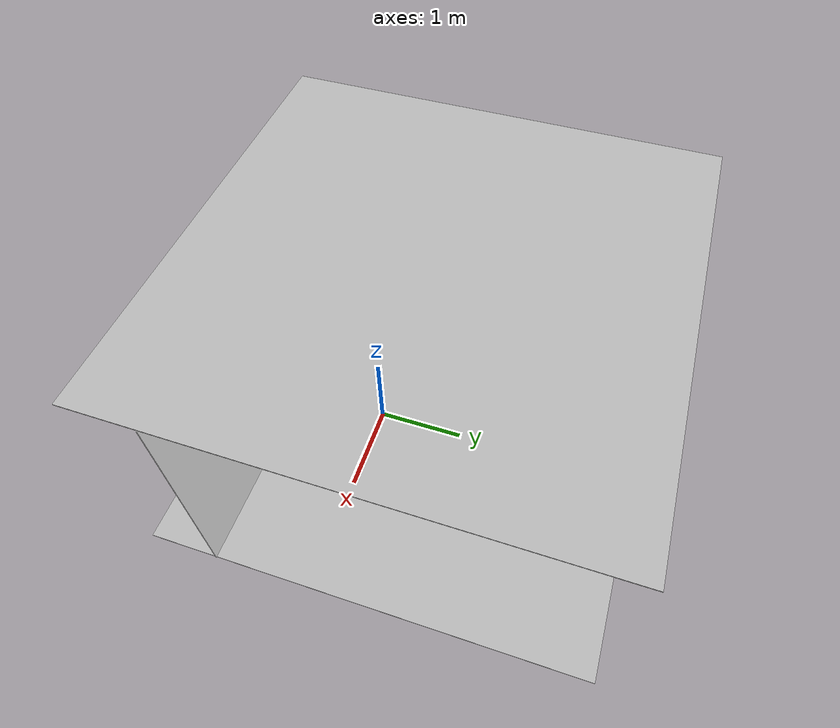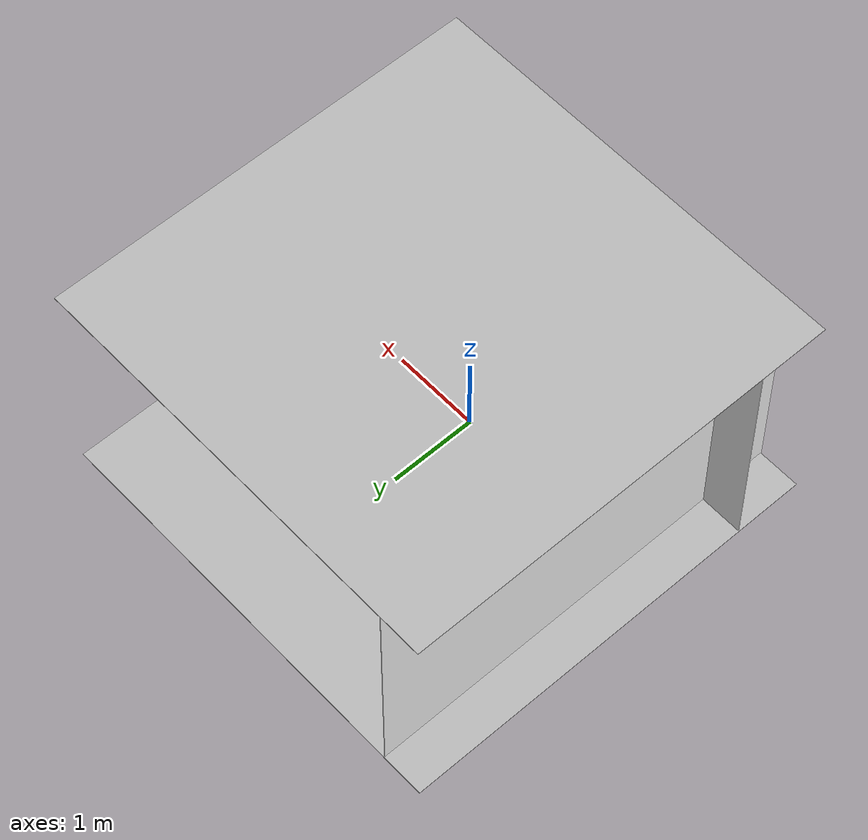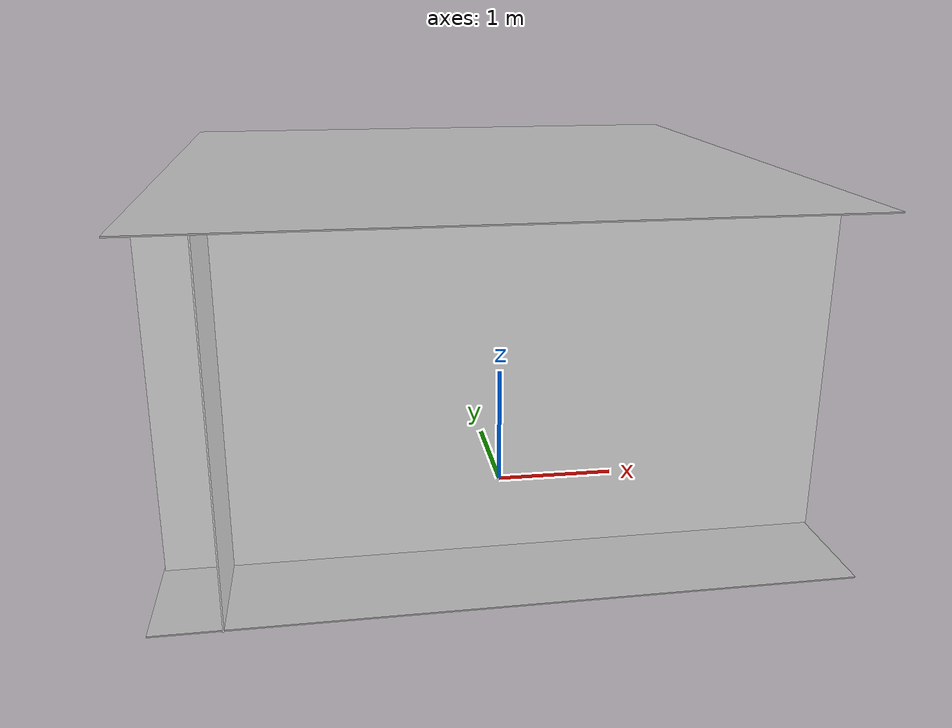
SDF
<sdf version="1.6">
 <world name="default">
  <model name="ground">
   <static>1</static>
   <link name="link">
    <pose>0 0 -0.005 0 -0 0</pose>
    <collision name="collision"><geometry><box><size>5 5 0.01</size></box></geometry></collision>
    <visual name="visual"><geometry><box><size>5 5 0.01</size></box></geometry></visual>
   </link>
   <pose>-0.2 0.6 0 0 -0 0</pose>
  </model>
  <model name="ground_1">
   <static>1</static>
   <link name="link">
    <pose>0 0 -0.005 0 -0 0</pose>
    <collision name="collision"><geometry><box><size>5 5 0.01</size></box></geometry></collision>
    <visual name="visual"><geometry><box><size>5 5 0.01</size></box></geometry></visual>
   </link>
   <pose>-0.2 0.6 2.7 0 -0 0</pose>
  </model>
  <light name="lab_light" type="directional">
   <pose>0.86 1.96 2.5 -1.55 0 0</pose>
   <diffuse>0.8 0.8 0.8 1</diffuse>
   <specular>0.2 0.2 0.2 1</specular>
   <attenuation>
    <range>20</range>
    <constant>0.9</constant>
    <linear>0.01</linear>
    <quadratic>0.001</quadratic>
   </attenuation>
   <direction>0 0 -1</direction>
  </light>
  <model name="stand_small">
   <static>1</static>
   <link name="link">
    <inertial><mass>20</mass></inertial>
    <collision name="collision">
     <geometry><mesh><uri>model://stand_small/meshes/stand_small.STL</uri></mesh></geometry>
    </collision>
    <visual name="visual">
     <geometry><mesh><uri>model://stand_small/meshes/stand_small.STL</uri></mesh></geometry>
    </visual>
   </link>
   <pose>-0.338887 -0.447438 0 0 -0 0</pose>
  </model>
  <model name="stand_small_1">
   <static>1</static>
   <link name="link">
    <inertial><mass>20</mass></inertial>
    <collision name="collision">
     <geometry><mesh><uri>model://stand_small/meshes/stand_small.STL</uri></mesh></geometry>
    </collision>
    <visual name="visual">
     <geometry><mesh><uri>model://stand_small/meshes/stand_small.STL</uri></mesh></geometry>
    </visual>
   </link>
   <pose>-0.338887 1.04762 0 0 -0 0</pose>
  </model>
  <model name="wall_1">
   <static>1</static>
   <link name="link">
    <collision name="collision_wall"><geometry><box><size>5 0.01 2.7</size></box></geometry></collision>
    <visual name="visual_wall">
     <geometry><box><size>5 0.01 2.7</size></box></geometry>
     <material>
      <script><uri>file://media/materials/scripts/gazebo.material</uri><name>Gazebo/White</name></script>
     </material>
    </visual>
   </link>
   <pose>-0.19 -1.1 1.34 0 -0 0</pose>
  </model>
  <model name="wall_2">
   <static>1</static>
   <link name="link">
    <collision name="collision_wall"><geometry><box><size>5 0.01 2.7</size></box></geometry></collision>
    <visual name="visual_wall">
     <geometry><box><size>5 0.01 2.7</size></box></geometry>
     <material>
      <script><uri>file://media/materials/scripts/gazebo.material</uri><name>Gazebo/White</name></script>
     </material>
    </visual>
   </link>
   <pose>-2.2 0.59 1.34 0 -0 1.5708</pose>
  </model>
  <physics name="default_physics" default="0" type="ode">
   <ode>
    <solver>
     <type>quick</type>
     <iters>100</iters>
     <precon_iters>0</precon_iters>
     <sor>1</sor>
     <use_dynamic_moi_rescaling>0</use_dynamic_moi_rescaling>
    </solver>
    <constraints>
     <cfm>0</cfm>
     <erp>0.5</erp>
     <contact_max_correcting_vel>1000</contact_max_correcting_vel>
     <contact_surface_layer>0</contact_surface_layer>
    </constraints>
   </ode>
   <real_time_update_rate>0</real_time_update_rate>
   <max_step_size>0.001</max_step_size>
   <real_time_factor>1</real_time_factor>
  </physics>
  <scene><ambient>0.4 0.4 0.4 1</ambient><background>0.7 0.7 1 1</background><shadows>1</shadows></scene>
  <gravity>0 0 -9.81</gravity>
  <magnetic_field>6e-06 2.3e-05 -4.2e-05</magnetic_field>
  <atmosphere type="adiabatic"/>
  <audio><device>default</device></audio>
  <spherical_coordinates>
   <surface_model>EARTH_WGS84</surface_model>
   <latitude_deg>0</latitude_deg>
   <longitude_deg>0</longitude_deg>
   <elevation>0</elevation>
   <heading_deg>0</heading_deg>
  </spherical_coordinates>
 </world>
</sdf>
